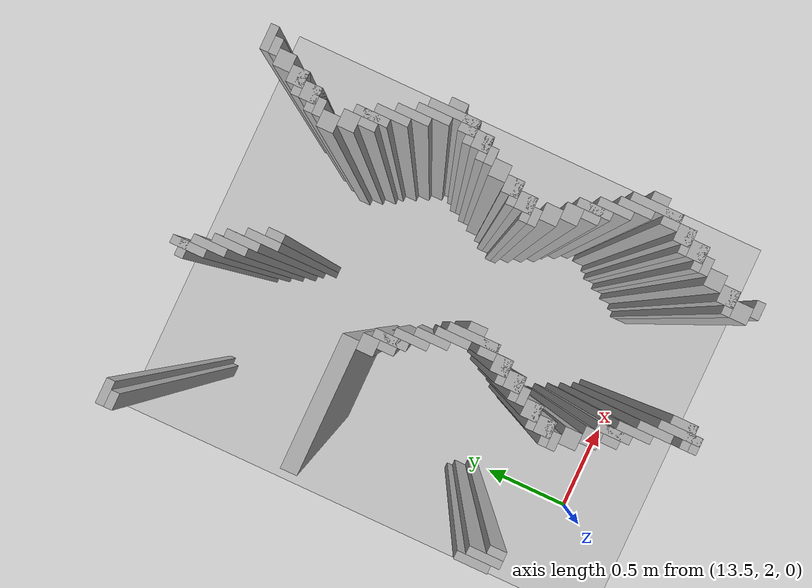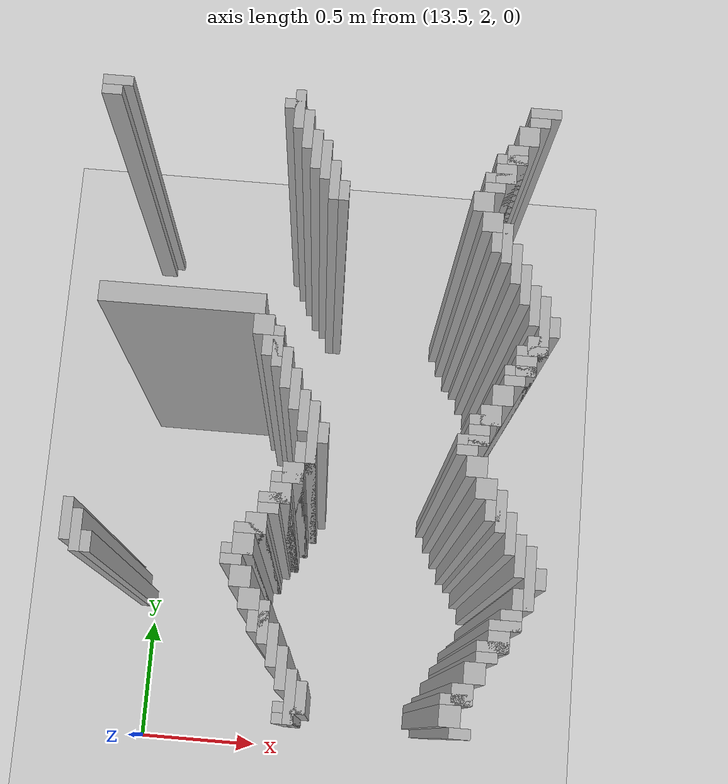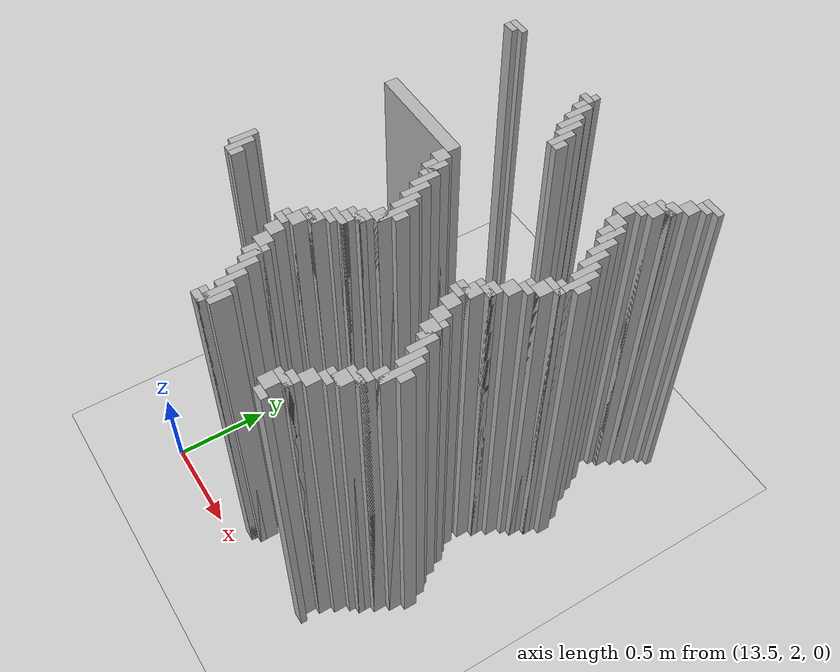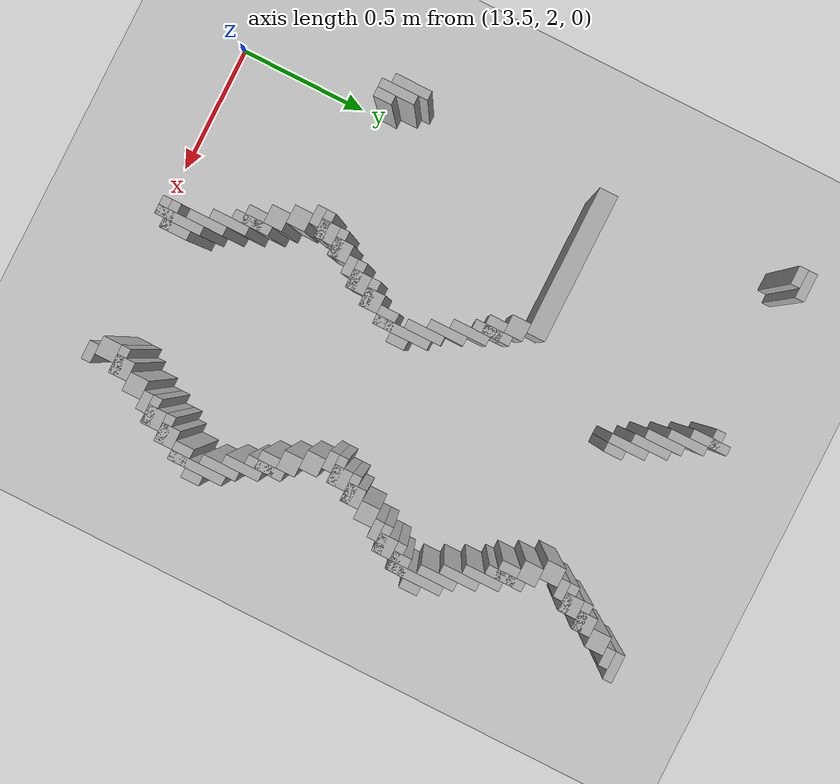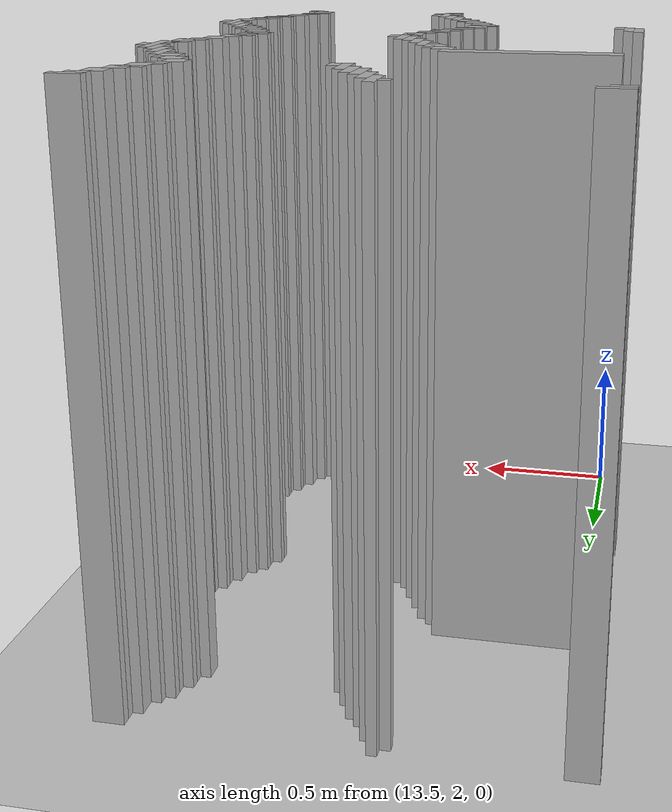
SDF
<sdf version="1.6">
 <world name="slam_world">
  <model name="ground_plane">
   <static>true</static>
   <link name="link">
    <collision name="collision">
     <geometry><plane><normal>0 0 1</normal><size>100 100</size></plane></geometry>
    </collision>
    <visual name="visual">
     <geometry><plane><normal>0 0 1</normal><size>100 100</size></plane></geometry>
     <material>
      <ambient>0.8 0.8 0.8 1</ambient>
      <diffuse>0.8 0.8 0.8 1</diffuse>
      <specular>0.8 0.8 0.8 1</specular>
     </material>
    </visual>
   </link>
  </model>
  <model name="wall_4468">
   <static>true</static>
   <pose>13.416473317865428 4.193735498839907 1.0 0 0 0</pose>
   <link name="link">
    <collision name="collision">
     <geometry><box><size>0.10440835266821345 0.03480278422273782 2.0</size></box></geometry>
    </collision>
    <visual name="visual">
     <geometry><box><size>0.10440835266821345 0.03480278422273782 2.0</size></box></geometry>
     <material><ambient>0.5 0.5 0.5 1</ambient><diffuse>0.7 0.7 0.7 1</diffuse></material>
    </visual>
   </link>
  </model>
  <model name="wall_4469">
   <static>true</static>
   <pose>14.042923433874709 4.1415313225058 1.0 0 0 0</pose>
   <link name="link">
    <collision name="collision">
     <geometry><box><size>0.03480278422273782 0.13921113689095127 2.0</size></box></geometry>
    </collision>
    <visual name="visual">
     <geometry><box><size>0.03480278422273782 0.13921113689095127 2.0</size></box></geometry>
     <material><ambient>0.5 0.5 0.5 1</ambient><diffuse>0.7 0.7 0.7 1</diffuse></material>
    </visual>
   </link>
  </model>
  <model name="wall_4470">
   <static>true</static>
   <pose>14.878190255220417 4.193735498839907 1.0 0 0 0</pose>
   <link name="link">
    <collision name="collision">
     <geometry><box><size>0.10440835266821345 0.03480278422273782 2.0</size></box></geometry>
    </collision>
    <visual name="visual">
     <geometry><box><size>0.10440835266821345 0.03480278422273782 2.0</size></box></geometry>
     <material><ambient>0.5 0.5 0.5 1</ambient><diffuse>0.7 0.7 0.7 1</diffuse></material>
    </visual>
   </link>
  </model>
  <model name="wall_4478">
   <static>true</static>
   <pose>13.39907192575406 4.158932714617169 1.0 0 0 0</pose>
   <link name="link">
    <collision name="collision">
     <geometry><box><size>0.06960556844547564 0.03480278422273782 2.0</size></box></geometry>
    </collision>
    <visual name="visual">
     <geometry><box><size>0.06960556844547564 0.03480278422273782 2.0</size></box></geometry>
     <material><ambient>0.5 0.5 0.5 1</ambient><diffuse>0.7 0.7 0.7 1</diffuse></material>
    </visual>
   </link>
  </model>
  <model name="wall_4479">
   <static>true</static>
   <pose>14.02552204176334 4.158932714617169 1.0 0 0 0</pose>
   <link name="link">
    <collision name="collision">
     <geometry><box><size>0.06960556844547564 0.03480278422273782 2.0</size></box></geometry>
    </collision>
    <visual name="visual">
     <geometry><box><size>0.06960556844547564 0.03480278422273782 2.0</size></box></geometry>
     <material><ambient>0.5 0.5 0.5 1</ambient><diffuse>0.7 0.7 0.7 1</diffuse></material>
    </visual>
   </link>
  </model>
  <model name="wall_4480">
   <static>true</static>
   <pose>14.860788863109049 4.158932714617169 1.0 0 0 0</pose>
   <link name="link">
    <collision name="collision">
     <geometry><box><size>0.06960556844547564 0.03480278422273782 2.0</size></box></geometry>
    </collision>
    <visual name="visual">
     <geometry><box><size>0.06960556844547564 0.03480278422273782 2.0</size></box></geometry>
     <material><ambient>0.5 0.5 0.5 1</ambient><diffuse>0.7 0.7 0.7 1</diffuse></material>
    </visual>
   </link>
  </model>
  <model name="wall_4494">
   <static>true</static>
   <pose>14.077726218097448 4.071925754060325 1.0 0 0 0</pose>
   <link name="link">
    <collision name="collision">
     <geometry><box><size>0.03480278422273782 0.13921113689095127 2.0</size></box></geometry>
    </collision>
    <visual name="visual">
     <geometry><box><size>0.03480278422273782 0.13921113689095127 2.0</size></box></geometry>
     <material><ambient>0.5 0.5 0.5 1</ambient><diffuse>0.7 0.7 0.7 1</diffuse></material>
    </visual>
   </link>
  </model>
  <model name="wall_4495">
   <static>true</static>
   <pose>14.825986078886311 4.106728538283062 1.0 0 0 0</pose>
   <link name="link">
    <collision name="collision">
     <geometry><box><size>0.06960556844547564 0.06960556844547564 2.0</size></box></geometry>
    </collision>
    <visual name="visual">
     <geometry><box><size>0.06960556844547564 0.06960556844547564 2.0</size></box></geometry>
     <material><ambient>0.5 0.5 0.5 1</ambient><diffuse>0.7 0.7 0.7 1</diffuse></material>
    </visual>
   </link>
  </model>
  <model name="wall_4509">
   <static>true</static>
   <pose>14.112529002320185 4.002320185614849 1.0 0 0 0</pose>
   <link name="link">
    <collision name="collision">
     <geometry><box><size>0.03480278422273782 0.13921113689095127 2.0</size></box></geometry>
    </collision>
    <visual name="visual">
     <geometry><box><size>0.03480278422273782 0.13921113689095127 2.0</size></box></geometry>
     <material><ambient>0.5 0.5 0.5 1</ambient><diffuse>0.7 0.7 0.7 1</diffuse></material>
    </visual>
   </link>
  </model>
  <model name="wall_4510">
   <static>true</static>
   <pose>14.791183294663572 4.037122969837587 1.0 0 0 0</pose>
   <link name="link">
    <collision name="collision">
     <geometry><box><size>0.06960556844547564 0.06960556844547564 2.0</size></box></geometry>
    </collision>
    <visual name="visual">
     <geometry><box><size>0.06960556844547564 0.06960556844547564 2.0</size></box></geometry>
     <material><ambient>0.5 0.5 0.5 1</ambient><diffuse>0.7 0.7 0.7 1</diffuse></material>
    </visual>
   </link>
  </model>
  <model name="wall_4524">
   <static>true</static>
   <pose>14.147331786542923 3.967517401392111 1.0 0 0 0</pose>
   <link name="link">
    <collision name="collision">
     <geometry><box><size>0.03480278422273782 0.13921113689095127 2.0</size></box></geometry>
    </collision>
    <visual name="visual">
     <geometry><box><size>0.03480278422273782 0.13921113689095127 2.0</size></box></geometry>
     <material><ambient>0.5 0.5 0.5 1</ambient><diffuse>0.7 0.7 0.7 1</diffuse></material>
    </visual>
   </link>
  </model>
  <model name="wall_4525">
   <static>true</static>
   <pose>14.773781902552203 4.019721577726218 1.0 0 0 0</pose>
   <link name="link">
    <collision name="collision">
     <geometry><box><size>0.10440835266821345 0.03480278422273782 2.0</size></box></geometry>
    </collision>
    <visual name="visual">
     <geometry><box><size>0.10440835266821345 0.03480278422273782 2.0</size></box></geometry>
     <material><ambient>0.5 0.5 0.5 1</ambient><diffuse>0.7 0.7 0.7 1</diffuse></material>
    </visual>
   </link>
  </model>
  <model name="wall_4533">
   <static>true</static>
   <pose>14.756380510440835 3.967517401392111 1.0 0 0 0</pose>
   <link name="link">
    <collision name="collision">
     <geometry><box><size>0.06960556844547564 0.06960556844547564 2.0</size></box></geometry>
    </collision>
    <visual name="visual">
     <geometry><box><size>0.06960556844547564 0.06960556844547564 2.0</size></box></geometry>
     <material><ambient>0.5 0.5 0.5 1</ambient><diffuse>0.7 0.7 0.7 1</diffuse></material>
    </visual>
   </link>
  </model>
  <model name="wall_4547">
   <static>true</static>
   <pose>14.18213457076566 3.897911832946636 1.0 0 0 0</pose>
   <link name="link">
    <collision name="collision">
     <geometry><box><size>0.03480278422273782 0.13921113689095127 2.0</size></box></geometry>
    </collision>
    <visual name="visual">
     <geometry><box><size>0.03480278422273782 0.13921113689095127 2.0</size></box></geometry>
     <material><ambient>0.5 0.5 0.5 1</ambient><diffuse>0.7 0.7 0.7 1</diffuse></material>
    </visual>
   </link>
  </model>
  <model name="wall_4548">
   <static>true</static>
   <pose>14.738979118329466 3.9501160092807424 1.0 0 0 0</pose>
   <link name="link">
    <collision name="collision">
     <geometry><box><size>0.10440835266821345 0.03480278422273782 2.0</size></box></geometry>
    </collision>
    <visual name="visual">
     <geometry><box><size>0.10440835266821345 0.03480278422273782 2.0</size></box></geometry>
     <material><ambient>0.5 0.5 0.5 1</ambient><diffuse>0.7 0.7 0.7 1</diffuse></material>
    </visual>
   </link>
  </model>
  <model name="wall_4556">
   <static>true</static>
   <pose>14.721577726218097 3.9153132250580045 1.0 0 0 0</pose>
   <link name="link">
    <collision name="collision">
     <geometry><box><size>0.06960556844547564 0.03480278422273782 2.0</size></box></geometry>
    </collision>
    <visual name="visual">
     <geometry><box><size>0.06960556844547564 0.03480278422273782 2.0</size></box></geometry>
     <material><ambient>0.5 0.5 0.5 1</ambient><diffuse>0.7 0.7 0.7 1</diffuse></material>
    </visual>
   </link>
  </model>
  <model name="wall_4569">
   <static>true</static>
   <pose>14.2169373549884 3.863109048723898 1.0 0 0 0</pose>
   <link name="link">
    <collision name="collision">
     <geometry><box><size>0.03480278422273782 0.06960556844547564 2.0</size></box></geometry>
    </collision>
    <visual name="visual">
     <geometry><box><size>0.03480278422273782 0.06960556844547564 2.0</size></box></geometry>
     <material><ambient>0.5 0.5 0.5 1</ambient><diffuse>0.7 0.7 0.7 1</diffuse></material>
    </visual>
   </link>
  </model>
  <model name="wall_4570">
   <static>true</static>
   <pose>14.68677494199536 3.863109048723898 1.0 0 0 0</pose>
   <link name="link">
    <collision name="collision">
     <geometry><box><size>0.06960556844547564 0.06960556844547564 2.0</size></box></geometry>
    </collision>
    <visual name="visual">
     <geometry><box><size>0.06960556844547564 0.06960556844547564 2.0</size></box></geometry>
     <material><ambient>0.5 0.5 0.5 1</ambient><diffuse>0.7 0.7 0.7 1</diffuse></material>
    </visual>
   </link>
  </model>
  <model name="wall_4584">
   <static>true</static>
   <pose>14.721577726218097 3.793503480278422 1.0 0 0 0</pose>
   <link name="link">
    <collision name="collision">
     <geometry><box><size>0.06960556844547564 0.06960556844547564 2.0</size></box></geometry>
    </collision>
    <visual name="visual">
     <geometry><box><size>0.06960556844547564 0.06960556844547564 2.0</size></box></geometry>
     <material><ambient>0.5 0.5 0.5 1</ambient><diffuse>0.7 0.7 0.7 1</diffuse></material>
    </visual>
   </link>
  </model>
  <model name="wall_4598">
   <static>true</static>
   <pose>14.773781902552203 3.7238979118329465 1.0 0 0 0</pose>
   <link name="link">
    <collision name="collision">
     <geometry><box><size>0.03480278422273782 0.13921113689095127 2.0</size></box></geometry>
    </collision>
    <visual name="visual">
     <geometry><box><size>0.03480278422273782 0.13921113689095127 2.0</size></box></geometry>
     <material><ambient>0.5 0.5 0.5 1</ambient><diffuse>0.7 0.7 0.7 1</diffuse></material>
    </visual>
   </link>
  </model>
  <model name="wall_4612">
   <static>true</static>
   <pose>14.756380510440835 3.7238979118329465 1.0 0 0 0</pose>
   <link name="link">
    <collision name="collision">
     <geometry><box><size>0.06960556844547564 0.06960556844547564 2.0</size></box></geometry>
    </collision>
    <visual name="visual">
     <geometry><box><size>0.06960556844547564 0.06960556844547564 2.0</size></box></geometry>
     <material><ambient>0.5 0.5 0.5 1</ambient><diffuse>0.7 0.7 0.7 1</diffuse></material>
    </visual>
   </link>
  </model>
  <model name="wall_4626">
   <static>true</static>
   <pose>14.80858468677494 3.6542923433874708 1.0 0 0 0</pose>
   <link name="link">
    <collision name="collision">
     <geometry><box><size>0.03480278422273782 0.13921113689095127 2.0</size></box></geometry>
    </collision>
    <visual name="visual">
     <geometry><box><size>0.03480278422273782 0.13921113689095127 2.0</size></box></geometry>
     <material><ambient>0.5 0.5 0.5 1</ambient><diffuse>0.7 0.7 0.7 1</diffuse></material>
    </visual>
   </link>
  </model>
  <model name="wall_4649">
   <static>true</static>
   <pose>14.84338747099768 3.584686774941995 1.0 0 0 0</pose>
   <link name="link">
    <collision name="collision">
     <geometry><box><size>0.03480278422273782 0.13921113689095127 2.0</size></box></geometry>
    </collision>
    <visual name="visual">
     <geometry><box><size>0.03480278422273782 0.13921113689095127 2.0</size></box></geometry>
     <material><ambient>0.5 0.5 0.5 1</ambient><diffuse>0.7 0.7 0.7 1</diffuse></material>
    </visual>
   </link>
  </model>
  <model name="wall_4672">
   <static>true</static>
   <pose>14.878190255220417 3.51508120649652 1.0 0 0 0</pose>
   <link name="link">
    <collision name="collision">
     <geometry><box><size>0.03480278422273782 0.13921113689095127 2.0</size></box></geometry>
    </collision>
    <visual name="visual">
     <geometry><box><size>0.03480278422273782 0.13921113689095127 2.0</size></box></geometry>
     <material><ambient>0.5 0.5 0.5 1</ambient><diffuse>0.7 0.7 0.7 1</diffuse></material>
    </visual>
   </link>
  </model>
  <model name="wall_4686">
   <static>true</static>
   <pose>14.912993039443155 3.445475638051044 1.0 0 0 0</pose>
   <link name="link">
    <collision name="collision">
     <geometry><box><size>0.03480278422273782 0.2088167053364269 2.0</size></box></geometry>
    </collision>
    <visual name="visual">
     <geometry><box><size>0.03480278422273782 0.2088167053364269 2.0</size></box></geometry>
     <material><ambient>0.5 0.5 0.5 1</ambient><diffuse>0.7 0.7 0.7 1</diffuse></material>
    </visual>
   </link>
  </model>
  <model name="wall_4708">
   <static>true</static>
   <pose>13.7122969837587 3.445475638051044 1.0 0 0 0</pose>
   <link name="link">
    <collision name="collision">
     <geometry><box><size>0.5568445475638051 0.06960556844547564 2.0</size></box></geometry>
    </collision>
    <visual name="visual">
     <geometry><box><size>0.5568445475638051 0.06960556844547564 2.0</size></box></geometry>
     <material><ambient>0.5 0.5 0.5 1</ambient><diffuse>0.7 0.7 0.7 1</diffuse></material>
    </visual>
   </link>
  </model>
  <model name="wall_4709">
   <static>true</static>
   <pose>14.947795823665892 3.445475638051044 1.0 0 0 0</pose>
   <link name="link">
    <collision name="collision">
     <geometry><box><size>0.03480278422273782 0.06960556844547564 2.0</size></box></geometry>
    </collision>
    <visual name="visual">
     <geometry><box><size>0.03480278422273782 0.06960556844547564 2.0</size></box></geometry>
     <material><ambient>0.5 0.5 0.5 1</ambient><diffuse>0.7 0.7 0.7 1</diffuse></material>
    </visual>
   </link>
  </model>
  <model name="wall_4731">
   <static>true</static>
   <pose>13.990719257540603 3.3758700696055683 1.0 0 0 0</pose>
   <link name="link">
    <collision name="collision">
     <geometry><box><size>0.06960556844547564 0.06960556844547564 2.0</size></box></geometry>
    </collision>
    <visual name="visual">
     <geometry><box><size>0.06960556844547564 0.06960556844547564 2.0</size></box></geometry>
     <material><ambient>0.5 0.5 0.5 1</ambient><diffuse>0.7 0.7 0.7 1</diffuse></material>
    </visual>
   </link>
  </model>
  <model name="wall_4732">
   <static>true</static>
   <pose>14.895591647331786 3.3758700696055683 1.0 0 0 0</pose>
   <link name="link">
    <collision name="collision">
     <geometry><box><size>0.06960556844547564 0.06960556844547564 2.0</size></box></geometry>
    </collision>
    <visual name="visual">
     <geometry><box><size>0.06960556844547564 0.06960556844547564 2.0</size></box></geometry>
     <material><ambient>0.5 0.5 0.5 1</ambient><diffuse>0.7 0.7 0.7 1</diffuse></material>
    </visual>
   </link>
  </model>
  <model name="wall_4745">
   <static>true</static>
   <pose>14.042923433874709 3.3062645011600926 1.0 0 0 0</pose>
   <link name="link">
    <collision name="collision">
     <geometry><box><size>0.03480278422273782 0.13921113689095127 2.0</size></box></geometry>
    </collision>
    <visual name="visual">
     <geometry><box><size>0.03480278422273782 0.13921113689095127 2.0</size></box></geometry>
     <material><ambient>0.5 0.5 0.5 1</ambient><diffuse>0.7 0.7 0.7 1</diffuse></material>
    </visual>
   </link>
  </model>
  <model name="wall_4746">
   <static>true</static>
   <pose>14.878190255220417 3.358468677494199 1.0 0 0 0</pose>
   <link name="link">
    <collision name="collision">
     <geometry><box><size>0.10440835266821345 0.03480278422273782 2.0</size></box></geometry>
    </collision>
    <visual name="visual">
     <geometry><box><size>0.10440835266821345 0.03480278422273782 2.0</size></box></geometry>
     <material><ambient>0.5 0.5 0.5 1</ambient><diffuse>0.7 0.7 0.7 1</diffuse></material>
    </visual>
   </link>
  </model>
  <model name="wall_4759">
   <static>true</static>
   <pose>14.02552204176334 3.3062645011600926 1.0 0 0 0</pose>
   <link name="link">
    <collision name="collision">
     <geometry><box><size>0.06960556844547564 0.06960556844547564 2.0</size></box></geometry>
    </collision>
    <visual name="visual">
     <geometry><box><size>0.06960556844547564 0.06960556844547564 2.0</size></box></geometry>
     <material><ambient>0.5 0.5 0.5 1</ambient><diffuse>0.7 0.7 0.7 1</diffuse></material>
    </visual>
   </link>
  </model>
  <model name="wall_4760">
   <static>true</static>
   <pose>14.860788863109049 3.3062645011600926 1.0 0 0 0</pose>
   <link name="link">
    <collision name="collision">
     <geometry><box><size>0.06960556844547564 0.06960556844547564 2.0</size></box></geometry>
    </collision>
    <visual name="visual">
     <geometry><box><size>0.06960556844547564 0.06960556844547564 2.0</size></box></geometry>
     <material><ambient>0.5 0.5 0.5 1</ambient><diffuse>0.7 0.7 0.7 1</diffuse></material>
    </visual>
   </link>
  </model>
  <model name="wall_4773">
   <static>true</static>
   <pose>14.077726218097448 3.236658932714617 1.0 0 0 0</pose>
   <link name="link">
    <collision name="collision">
     <geometry><box><size>0.03480278422273782 0.13921113689095127 2.0</size></box></geometry>
    </collision>
    <visual name="visual">
     <geometry><box><size>0.03480278422273782 0.13921113689095127 2.0</size></box></geometry>
     <material><ambient>0.5 0.5 0.5 1</ambient><diffuse>0.7 0.7 0.7 1</diffuse></material>
    </visual>
   </link>
  </model>
  <model name="wall_4774">
   <static>true</static>
   <pose>14.84338747099768 3.288863109048724 1.0 0 0 0</pose>
   <link name="link">
    <collision name="collision">
     <geometry><box><size>0.10440835266821345 0.03480278422273782 2.0</size></box></geometry>
    </collision>
    <visual name="visual">
     <geometry><box><size>0.10440835266821345 0.03480278422273782 2.0</size></box></geometry>
     <material><ambient>0.5 0.5 0.5 1</ambient><diffuse>0.7 0.7 0.7 1</diffuse></material>
    </visual>
   </link>
  </model>
  <model name="wall_4781">
   <static>true</static>
   <pose>14.825986078886311 3.254060324825986 1.0 0 0 0</pose>
   <link name="link">
    <collision name="collision">
     <geometry><box><size>0.06960556844547564 0.03480278422273782 2.0</size></box></geometry>
    </collision>
    <visual name="visual">
     <geometry><box><size>0.06960556844547564 0.03480278422273782 2.0</size></box></geometry>
     <material><ambient>0.5 0.5 0.5 1</ambient><diffuse>0.7 0.7 0.7 1</diffuse></material>
    </visual>
   </link>
  </model>
  <model name="wall_4794">
   <static>true</static>
   <pose>14.112529002320185 3.167053364269141 1.0 0 0 0</pose>
   <link name="link">
    <collision name="collision">
     <geometry><box><size>0.03480278422273782 0.13921113689095127 2.0</size></box></geometry>
    </collision>
    <visual name="visual">
     <geometry><box><size>0.03480278422273782 0.13921113689095127 2.0</size></box></geometry>
     <material><ambient>0.5 0.5 0.5 1</ambient><diffuse>0.7 0.7 0.7 1</diffuse></material>
    </visual>
   </link>
  </model>
  <model name="wall_4795">
   <static>true</static>
   <pose>14.791183294663572 3.201856148491879 1.0 0 0 0</pose>
   <link name="link">
    <collision name="collision">
     <geometry><box><size>0.06960556844547564 0.06960556844547564 2.0</size></box></geometry>
    </collision>
    <visual name="visual">
     <geometry><box><size>0.06960556844547564 0.06960556844547564 2.0</size></box></geometry>
     <material><ambient>0.5 0.5 0.5 1</ambient><diffuse>0.7 0.7 0.7 1</diffuse></material>
    </visual>
   </link>
  </model>
  <model name="wall_4808">
   <static>true</static>
   <pose>14.147331786542923 3.097447795823666 1.0 0 0 0</pose>
   <link name="link">
    <collision name="collision">
     <geometry><box><size>0.03480278422273782 0.13921113689095127 2.0</size></box></geometry>
    </collision>
    <visual name="visual">
     <geometry><box><size>0.03480278422273782 0.13921113689095127 2.0</size></box></geometry>
     <material><ambient>0.5 0.5 0.5 1</ambient><diffuse>0.7 0.7 0.7 1</diffuse></material>
    </visual>
   </link>
  </model>
  <model name="wall_4809">
   <static>true</static>
   <pose>14.756380510440835 3.1322505800464038 1.0 0 0 0</pose>
   <link name="link">
    <collision name="collision">
     <geometry><box><size>0.06960556844547564 0.06960556844547564 2.0</size></box></geometry>
    </collision>
    <visual name="visual">
     <geometry><box><size>0.06960556844547564 0.06960556844547564 2.0</size></box></geometry>
     <material><ambient>0.5 0.5 0.5 1</ambient><diffuse>0.7 0.7 0.7 1</diffuse></material>
    </visual>
   </link>
  </model>
  <model name="wall_4822">
   <static>true</static>
   <pose>14.18213457076566 3.02784222737819 1.0 0 0 0</pose>
   <link name="link">
    <collision name="collision">
     <geometry><box><size>0.03480278422273782 0.2088167053364269 2.0</size></box></geometry>
    </collision>
    <visual name="visual">
     <geometry><box><size>0.03480278422273782 0.2088167053364269 2.0</size></box></geometry>
     <material><ambient>0.5 0.5 0.5 1</ambient><diffuse>0.7 0.7 0.7 1</diffuse></material>
    </visual>
   </link>
  </model>
  <model name="wall_4823">
   <static>true</static>
   <pose>14.738979118329466 3.1148491879350346 1.0 0 0 0</pose>
   <link name="link">
    <collision name="collision">
     <geometry><box><size>0.10440835266821345 0.03480278422273782 2.0</size></box></geometry>
    </collision>
    <visual name="visual">
     <geometry><box><size>0.10440835266821345 0.03480278422273782 2.0</size></box></geometry>
     <material><ambient>0.5 0.5 0.5 1</ambient><diffuse>0.7 0.7 0.7 1</diffuse></material>
    </visual>
   </link>
  </model>
  <model name="wall_4830">
   <static>true</static>
   <pose>14.721577726218097 3.062645011600928 1.0 0 0 0</pose>
   <link name="link">
    <collision name="collision">
     <geometry><box><size>0.06960556844547564 0.06960556844547564 2.0</size></box></geometry>
    </collision>
    <visual name="visual">
     <geometry><box><size>0.06960556844547564 0.06960556844547564 2.0</size></box></geometry>
     <material><ambient>0.5 0.5 0.5 1</ambient><diffuse>0.7 0.7 0.7 1</diffuse></material>
    </visual>
   </link>
  </model>
  <model name="wall_4845">
   <static>true</static>
   <pose>14.2169373549884 3.02784222737819 1.0 0 0 0</pose>
   <link name="link">
    <collision name="collision">
     <geometry><box><size>0.03480278422273782 0.06960556844547564 2.0</size></box></geometry>
    </collision>
    <visual name="visual">
     <geometry><box><size>0.03480278422273782 0.06960556844547564 2.0</size></box></geometry>
     <material><ambient>0.5 0.5 0.5 1</ambient><diffuse>0.7 0.7 0.7 1</diffuse></material>
    </visual>
   </link>
  </model>
  <model name="wall_4846">
   <static>true</static>
   <pose>14.704176334106728 3.045243619489559 1.0 0 0 0</pose>
   <link name="link">
    <collision name="collision">
     <geometry><box><size>0.10440835266821345 0.03480278422273782 2.0</size></box></geometry>
    </collision>
    <visual name="visual">
     <geometry><box><size>0.10440835266821345 0.03480278422273782 2.0</size></box></geometry>
     <material><ambient>0.5 0.5 0.5 1</ambient><diffuse>0.7 0.7 0.7 1</diffuse></material>
    </visual>
   </link>
  </model>
  <model name="wall_4853">
   <static>true</static>
   <pose>14.68677494199536 3.010440835266821 1.0 0 0 0</pose>
   <link name="link">
    <collision name="collision">
     <geometry><box><size>0.06960556844547564 0.03480278422273782 2.0</size></box></geometry>
    </collision>
    <visual name="visual">
     <geometry><box><size>0.06960556844547564 0.03480278422273782 2.0</size></box></geometry>
     <material><ambient>0.5 0.5 0.5 1</ambient><diffuse>0.7 0.7 0.7 1</diffuse></material>
    </visual>
   </link>
  </model>
  <model name="wall_4868">
   <static>true</static>
   <pose>14.164733178654291 2.9582366589327145 1.0 0 0 0</pose>
   <link name="link">
    <collision name="collision">
     <geometry><box><size>0.06960556844547564 0.06960556844547564 2.0</size></box></geometry>
    </collision>
    <visual name="visual">
     <geometry><box><size>0.06960556844547564 0.06960556844547564 2.0</size></box></geometry>
     <material><ambient>0.5 0.5 0.5 1</ambient><diffuse>0.7 0.7 0.7 1</diffuse></material>
    </visual>
   </link>
  </model>
  <model name="wall_4869">
   <static>true</static>
   <pose>14.721577726218097 2.9582366589327145 1.0 0 0 0</pose>
   <link name="link">
    <collision name="collision">
     <geometry><box><size>0.06960556844547564 0.06960556844547564 2.0</size></box></geometry>
    </collision>
    <visual name="visual">
     <geometry><box><size>0.06960556844547564 0.06960556844547564 2.0</size></box></geometry>
     <material><ambient>0.5 0.5 0.5 1</ambient><diffuse>0.7 0.7 0.7 1</diffuse></material>
    </visual>
   </link>
  </model>
  <model name="wall_4886">
   <static>true</static>
   <pose>14.129930394431554 2.8886310904872388 1.0 0 0 0</pose>
   <link name="link">
    <collision name="collision">
     <geometry><box><size>0.06960556844547564 0.06960556844547564 2.0</size></box></geometry>
    </collision>
    <visual name="visual">
     <geometry><box><size>0.06960556844547564 0.06960556844547564 2.0</size></box></geometry>
     <material><ambient>0.5 0.5 0.5 1</ambient><diffuse>0.7 0.7 0.7 1</diffuse></material>
    </visual>
   </link>
  </model>
  <model name="wall_4887">
   <static>true</static>
   <pose>14.756380510440835 2.8886310904872388 1.0 0 0 0</pose>
   <link name="link">
    <collision name="collision">
     <geometry><box><size>0.06960556844547564 0.06960556844547564 2.0</size></box></geometry>
    </collision>
    <visual name="visual">
     <geometry><box><size>0.06960556844547564 0.06960556844547564 2.0</size></box></geometry>
     <material><ambient>0.5 0.5 0.5 1</ambient><diffuse>0.7 0.7 0.7 1</diffuse></material>
    </visual>
   </link>
  </model>
  <model name="wall_4902">
   <static>true</static>
   <pose>14.112529002320185 2.87122969837587 1.0 0 0 0</pose>
   <link name="link">
    <collision name="collision">
     <geometry><box><size>0.10440835266821345 0.03480278422273782 2.0</size></box></geometry>
    </collision>
    <visual name="visual">
     <geometry><box><size>0.10440835266821345 0.03480278422273782 2.0</size></box></geometry>
     <material><ambient>0.5 0.5 0.5 1</ambient><diffuse>0.7 0.7 0.7 1</diffuse></material>
    </visual>
   </link>
  </model>
  <model name="wall_4903">
   <static>true</static>
   <pose>14.80858468677494 2.819025522041763 1.0 0 0 0</pose>
   <link name="link">
    <collision name="collision">
     <geometry><box><size>0.03480278422273782 0.13921113689095127 2.0</size></box></geometry>
    </collision>
    <visual name="visual">
     <geometry><box><size>0.03480278422273782 0.13921113689095127 2.0</size></box></geometry>
     <material><ambient>0.5 0.5 0.5 1</ambient><diffuse>0.7 0.7 0.7 1</diffuse></material>
    </visual>
   </link>
  </model>
  <model name="wall_4918">
   <static>true</static>
   <pose>14.095127610208817 2.819025522041763 1.0 0 0 0</pose>
   <link name="link">
    <collision name="collision">
     <geometry><box><size>0.06960556844547564 0.06960556844547564 2.0</size></box></geometry>
    </collision>
    <visual name="visual">
     <geometry><box><size>0.06960556844547564 0.06960556844547564 2.0</size></box></geometry>
     <material><ambient>0.5 0.5 0.5 1</ambient><diffuse>0.7 0.7 0.7 1</diffuse></material>
    </visual>
   </link>
  </model>
  <model name="wall_4919">
   <static>true</static>
   <pose>14.791183294663572 2.819025522041763 1.0 0 0 0</pose>
   <link name="link">
    <collision name="collision">
     <geometry><box><size>0.06960556844547564 0.06960556844547564 2.0</size></box></geometry>
    </collision>
    <visual name="visual">
     <geometry><box><size>0.06960556844547564 0.06960556844547564 2.0</size></box></geometry>
     <material><ambient>0.5 0.5 0.5 1</ambient><diffuse>0.7 0.7 0.7 1</diffuse></material>
    </visual>
   </link>
  </model>
  <model name="wall_4934">
   <static>true</static>
   <pose>14.077726218097448 2.8016241299303943 1.0 0 0 0</pose>
   <link name="link">
    <collision name="collision">
     <geometry><box><size>0.10440835266821345 0.03480278422273782 2.0</size></box></geometry>
    </collision>
    <visual name="visual">
     <geometry><box><size>0.10440835266821345 0.03480278422273782 2.0</size></box></geometry>
     <material><ambient>0.5 0.5 0.5 1</ambient><diffuse>0.7 0.7 0.7 1</diffuse></material>
    </visual>
   </link>
  </model>
  <model name="wall_4935">
   <static>true</static>
   <pose>14.84338747099768 2.7494199535962878 1.0 0 0 0</pose>
   <link name="link">
    <collision name="collision">
     <geometry><box><size>0.03480278422273782 0.13921113689095127 2.0</size></box></geometry>
    </collision>
    <visual name="visual">
     <geometry><box><size>0.03480278422273782 0.13921113689095127 2.0</size></box></geometry>
     <material><ambient>0.5 0.5 0.5 1</ambient><diffuse>0.7 0.7 0.7 1</diffuse></material>
    </visual>
   </link>
  </model>
  <model name="wall_4942">
   <static>true</static>
   <pose>14.06032482598608 2.7668213457076565 1.0 0 0 0</pose>
   <link name="link">
    <collision name="collision">
     <geometry><box><size>0.06960556844547564 0.03480278422273782 2.0</size></box></geometry>
    </collision>
    <visual name="visual">
     <geometry><box><size>0.06960556844547564 0.03480278422273782 2.0</size></box></geometry>
     <material><ambient>0.5 0.5 0.5 1</ambient><diffuse>0.7 0.7 0.7 1</diffuse></material>
    </visual>
   </link>
  </model>
  <model name="wall_4956">
   <static>true</static>
   <pose>13.416473317865428 2.679814385150812 1.0 0 0 0</pose>
   <link name="link">
    <collision name="collision">
     <geometry><box><size>0.03480278422273782 0.13921113689095127 2.0</size></box></geometry>
    </collision>
    <visual name="visual">
     <geometry><box><size>0.03480278422273782 0.13921113689095127 2.0</size></box></geometry>
     <material><ambient>0.5 0.5 0.5 1</ambient><diffuse>0.7 0.7 0.7 1</diffuse></material>
    </visual>
   </link>
  </model>
  <model name="wall_4957">
   <static>true</static>
   <pose>14.02552204176334 2.71461716937355 1.0 0 0 0</pose>
   <link name="link">
    <collision name="collision">
     <geometry><box><size>0.06960556844547564 0.06960556844547564 2.0</size></box></geometry>
    </collision>
    <visual name="visual">
     <geometry><box><size>0.06960556844547564 0.06960556844547564 2.0</size></box></geometry>
     <material><ambient>0.5 0.5 0.5 1</ambient><diffuse>0.7 0.7 0.7 1</diffuse></material>
    </visual>
   </link>
  </model>
  <model name="wall_4958">
   <static>true</static>
   <pose>14.878190255220417 2.679814385150812 1.0 0 0 0</pose>
   <link name="link">
    <collision name="collision">
     <geometry><box><size>0.03480278422273782 0.13921113689095127 2.0</size></box></geometry>
    </collision>
    <visual name="visual">
     <geometry><box><size>0.03480278422273782 0.13921113689095127 2.0</size></box></geometry>
     <material><ambient>0.5 0.5 0.5 1</ambient><diffuse>0.7 0.7 0.7 1</diffuse></material>
    </visual>
   </link>
  </model>
  <model name="wall_4972">
   <static>true</static>
   <pose>13.451276102088167 2.645011600928074 1.0 0 0 0</pose>
   <link name="link">
    <collision name="collision">
     <geometry><box><size>0.03480278422273782 0.13921113689095127 2.0</size></box></geometry>
    </collision>
    <visual name="visual">
     <geometry><box><size>0.03480278422273782 0.13921113689095127 2.0</size></box></geometry>
     <material><ambient>0.5 0.5 0.5 1</ambient><diffuse>0.7 0.7 0.7 1</diffuse></material>
    </visual>
   </link>
  </model>
  <model name="wall_4973">
   <static>true</static>
   <pose>14.008120649651971 2.6972157772621808 1.0 0 0 0</pose>
   <link name="link">
    <collision name="collision">
     <geometry><box><size>0.10440835266821345 0.03480278422273782 2.0</size></box></geometry>
    </collision>
    <visual name="visual">
     <geometry><box><size>0.10440835266821345 0.03480278422273782 2.0</size></box></geometry>
     <material><ambient>0.5 0.5 0.5 1</ambient><diffuse>0.7 0.7 0.7 1</diffuse></material>
    </visual>
   </link>
  </model>
  <model name="wall_4974">
   <static>true</static>
   <pose>14.912993039443155 2.6102088167053363 1.0 0 0 0</pose>
   <link name="link">
    <collision name="collision">
     <geometry><box><size>0.03480278422273782 0.2088167053364269 2.0</size></box></geometry>
    </collision>
    <visual name="visual">
     <geometry><box><size>0.03480278422273782 0.2088167053364269 2.0</size></box></geometry>
     <material><ambient>0.5 0.5 0.5 1</ambient><diffuse>0.7 0.7 0.7 1</diffuse></material>
    </visual>
   </link>
  </model>
  <model name="wall_4981">
   <static>true</static>
   <pose>13.990719257540603 2.645011600928074 1.0 0 0 0</pose>
   <link name="link">
    <collision name="collision">
     <geometry><box><size>0.06960556844547564 0.06960556844547564 2.0</size></box></geometry>
    </collision>
    <visual name="visual">
     <geometry><box><size>0.06960556844547564 0.06960556844547564 2.0</size></box></geometry>
     <material><ambient>0.5 0.5 0.5 1</ambient><diffuse>0.7 0.7 0.7 1</diffuse></material>
    </visual>
   </link>
  </model>
  <model name="wall_4993">
   <static>true</static>
   <pose>13.486078886310905 2.6102088167053363 1.0 0 0 0</pose>
   <link name="link">
    <collision name="collision">
     <geometry><box><size>0.03480278422273782 0.06960556844547564 2.0</size></box></geometry>
    </collision>
    <visual name="visual">
     <geometry><box><size>0.03480278422273782 0.06960556844547564 2.0</size></box></geometry>
     <material><ambient>0.5 0.5 0.5 1</ambient><diffuse>0.7 0.7 0.7 1</diffuse></material>
    </visual>
   </link>
  </model>
  <model name="wall_4994">
   <static>true</static>
   <pose>13.973317865429234 2.627610208816705 1.0 0 0 0</pose>
   <link name="link">
    <collision name="collision">
     <geometry><box><size>0.10440835266821345 0.03480278422273782 2.0</size></box></geometry>
    </collision>
    <visual name="visual">
     <geometry><box><size>0.10440835266821345 0.03480278422273782 2.0</size></box></geometry>
     <material><ambient>0.5 0.5 0.5 1</ambient><diffuse>0.7 0.7 0.7 1</diffuse></material>
    </visual>
   </link>
  </model>
  <model name="wall_4995">
   <static>true</static>
   <pose>14.947795823665892 2.6102088167053363 1.0 0 0 0</pose>
   <link name="link">
    <collision name="collision">
     <geometry><box><size>0.03480278422273782 0.06960556844547564 2.0</size></box></geometry>
    </collision>
    <visual name="visual">
     <geometry><box><size>0.03480278422273782 0.06960556844547564 2.0</size></box></geometry>
     <material><ambient>0.5 0.5 0.5 1</ambient><diffuse>0.7 0.7 0.7 1</diffuse></material>
    </visual>
   </link>
  </model>
  <model name="wall_5006">
   <static>true</static>
   <pose>13.955916473317865 2.5928074245939676 1.0 0 0 0</pose>
   <link name="link">
    <collision name="collision">
     <geometry><box><size>0.06960556844547564 0.03480278422273782 2.0</size></box></geometry>
    </collision>
    <visual name="visual">
     <geometry><box><size>0.06960556844547564 0.03480278422273782 2.0</size></box></geometry>
     <material><ambient>0.5 0.5 0.5 1</ambient><diffuse>0.7 0.7 0.7 1</diffuse></material>
    </visual>
   </link>
  </model>
  <model name="wall_5021">
   <static>true</static>
   <pose>13.990719257540603 2.5406032482598606 1.0 0 0 0</pose>
   <link name="link">
    <collision name="collision">
     <geometry><box><size>0.06960556844547564 0.06960556844547564 2.0</size></box></geometry>
    </collision>
    <visual name="visual">
     <geometry><box><size>0.06960556844547564 0.06960556844547564 2.0</size></box></geometry>
     <material><ambient>0.5 0.5 0.5 1</ambient><diffuse>0.7 0.7 0.7 1</diffuse></material>
    </visual>
   </link>
  </model>
  <model name="wall_5022">
   <static>true</static>
   <pose>14.895591647331786 2.5406032482598606 1.0 0 0 0</pose>
   <link name="link">
    <collision name="collision">
     <geometry><box><size>0.06960556844547564 0.06960556844547564 2.0</size></box></geometry>
    </collision>
    <visual name="visual">
     <geometry><box><size>0.06960556844547564 0.06960556844547564 2.0</size></box></geometry>
     <material><ambient>0.5 0.5 0.5 1</ambient><diffuse>0.7 0.7 0.7 1</diffuse></material>
    </visual>
   </link>
  </model>
  <model name="wall_5045">
   <static>true</static>
   <pose>14.02552204176334 2.470997679814385 1.0 0 0 0</pose>
   <link name="link">
    <collision name="collision">
     <geometry><box><size>0.06960556844547564 0.06960556844547564 2.0</size></box></geometry>
    </collision>
    <visual name="visual">
     <geometry><box><size>0.06960556844547564 0.06960556844547564 2.0</size></box></geometry>
     <material><ambient>0.5 0.5 0.5 1</ambient><diffuse>0.7 0.7 0.7 1</diffuse></material>
    </visual>
   </link>
  </model>
  <model name="wall_5046">
   <static>true</static>
   <pose>14.860788863109049 2.470997679814385 1.0 0 0 0</pose>
   <link name="link">
    <collision name="collision">
     <geometry><box><size>0.06960556844547564 0.06960556844547564 2.0</size></box></geometry>
    </collision>
    <visual name="visual">
     <geometry><box><size>0.06960556844547564 0.06960556844547564 2.0</size></box></geometry>
     <material><ambient>0.5 0.5 0.5 1</ambient><diffuse>0.7 0.7 0.7 1</diffuse></material>
    </visual>
   </link>
  </model>
  <model name="wall_5061">
   <static>true</static>
   <pose>14.077726218097448 2.4013921113689096 1.0 0 0 0</pose>
   <link name="link">
    <collision name="collision">
     <geometry><box><size>0.03480278422273782 0.13921113689095127 2.0</size></box></geometry>
    </collision>
    <visual name="visual">
     <geometry><box><size>0.03480278422273782 0.13921113689095127 2.0</size></box></geometry>
     <material><ambient>0.5 0.5 0.5 1</ambient><diffuse>0.7 0.7 0.7 1</diffuse></material>
    </visual>
   </link>
  </model>
  <model name="wall_5062">
   <static>true</static>
   <pose>14.84338747099768 2.453596287703016 1.0 0 0 0</pose>
   <link name="link">
    <collision name="collision">
     <geometry><box><size>0.10440835266821345 0.03480278422273782 2.0</size></box></geometry>
    </collision>
    <visual name="visual">
     <geometry><box><size>0.10440835266821345 0.03480278422273782 2.0</size></box></geometry>
     <material><ambient>0.5 0.5 0.5 1</ambient><diffuse>0.7 0.7 0.7 1</diffuse></material>
    </visual>
   </link>
  </model>
  <model name="wall_5075">
   <static>true</static>
   <pose>14.06032482598608 2.4013921113689096 1.0 0 0 0</pose>
   <link name="link">
    <collision name="collision">
     <geometry><box><size>0.06960556844547564 0.06960556844547564 2.0</size></box></geometry>
    </collision>
    <visual name="visual">
     <geometry><box><size>0.06960556844547564 0.06960556844547564 2.0</size></box></geometry>
     <material><ambient>0.5 0.5 0.5 1</ambient><diffuse>0.7 0.7 0.7 1</diffuse></material>
    </visual>
   </link>
  </model>
  <model name="wall_5076">
   <static>true</static>
   <pose>14.825986078886311 2.4013921113689096 1.0 0 0 0</pose>
   <link name="link">
    <collision name="collision">
     <geometry><box><size>0.06960556844547564 0.06960556844547564 2.0</size></box></geometry>
    </collision>
    <visual name="visual">
     <geometry><box><size>0.06960556844547564 0.06960556844547564 2.0</size></box></geometry>
     <material><ambient>0.5 0.5 0.5 1</ambient><diffuse>0.7 0.7 0.7 1</diffuse></material>
    </visual>
   </link>
  </model>
  <model name="wall_5091">
   <static>true</static>
   <pose>14.112529002320185 2.331786542923434 1.0 0 0 0</pose>
   <link name="link">
    <collision name="collision">
     <geometry><box><size>0.03480278422273782 0.13921113689095127 2.0</size></box></geometry>
    </collision>
    <visual name="visual">
     <geometry><box><size>0.03480278422273782 0.13921113689095127 2.0</size></box></geometry>
     <material><ambient>0.5 0.5 0.5 1</ambient><diffuse>0.7 0.7 0.7 1</diffuse></material>
    </visual>
   </link>
  </model>
  <model name="wall_5092">
   <static>true</static>
   <pose>14.80858468677494 2.3839907192575405 1.0 0 0 0</pose>
   <link name="link">
    <collision name="collision">
     <geometry><box><size>0.10440835266821345 0.03480278422273782 2.0</size></box></geometry>
    </collision>
    <visual name="visual">
     <geometry><box><size>0.10440835266821345 0.03480278422273782 2.0</size></box></geometry>
     <material><ambient>0.5 0.5 0.5 1</ambient><diffuse>0.7 0.7 0.7 1</diffuse></material>
    </visual>
   </link>
  </model>
  <model name="wall_5100">
   <static>true</static>
   <pose>14.791183294663572 2.3491879350348026 1.0 0 0 0</pose>
   <link name="link">
    <collision name="collision">
     <geometry><box><size>0.06960556844547564 0.03480278422273782 2.0</size></box></geometry>
    </collision>
    <visual name="visual">
     <geometry><box><size>0.06960556844547564 0.03480278422273782 2.0</size></box></geometry>
     <material><ambient>0.5 0.5 0.5 1</ambient><diffuse>0.7 0.7 0.7 1</diffuse></material>
    </visual>
   </link>
  </model>
  <model name="wall_5115">
   <static>true</static>
   <pose>14.147331786542923 2.262180974477958 1.0 0 0 0</pose>
   <link name="link">
    <collision name="collision">
     <geometry><box><size>0.03480278422273782 0.13921113689095127 2.0</size></box></geometry>
    </collision>
    <visual name="visual">
     <geometry><box><size>0.03480278422273782 0.13921113689095127 2.0</size></box></geometry>
     <material><ambient>0.5 0.5 0.5 1</ambient><diffuse>0.7 0.7 0.7 1</diffuse></material>
    </visual>
   </link>
  </model>
  <model name="wall_5116">
   <static>true</static>
   <pose>14.756380510440835 2.296983758700696 1.0 0 0 0</pose>
   <link name="link">
    <collision name="collision">
     <geometry><box><size>0.06960556844547564 0.06960556844547564 2.0</size></box></geometry>
    </collision>
    <visual name="visual">
     <geometry><box><size>0.06960556844547564 0.06960556844547564 2.0</size></box></geometry>
     <material><ambient>0.5 0.5 0.5 1</ambient><diffuse>0.7 0.7 0.7 1</diffuse></material>
    </visual>
   </link>
  </model>
  <model name="wall_5131">
   <static>true</static>
   <pose>14.18213457076566 2.1751740139211138 1.0 0 0 0</pose>
   <link name="link">
    <collision name="collision">
     <geometry><box><size>0.03480278422273782 0.17401392111368907 2.0</size></box></geometry>
    </collision>
    <visual name="visual">
     <geometry><box><size>0.03480278422273782 0.17401392111368907 2.0</size></box></geometry>
     <material><ambient>0.5 0.5 0.5 1</ambient><diffuse>0.7 0.7 0.7 1</diffuse></material>
    </visual>
   </link>
  </model>
  <model name="wall_5132">
   <static>true</static>
   <pose>14.721577726218097 2.2273781902552203 1.0 0 0 0</pose>
   <link name="link">
    <collision name="collision">
     <geometry><box><size>0.06960556844547564 0.06960556844547564 2.0</size></box></geometry>
    </collision>
    <visual name="visual">
     <geometry><box><size>0.06960556844547564 0.06960556844547564 2.0</size></box></geometry>
     <material><ambient>0.5 0.5 0.5 1</ambient><diffuse>0.7 0.7 0.7 1</diffuse></material>
    </visual>
   </link>
  </model>
  <model name="wall_5146">
   <static>true</static>
   <pose>14.2169373549884 2.1751740139211138 1.0 0 0 0</pose>
   <link name="link">
    <collision name="collision">
     <geometry><box><size>0.03480278422273782 0.10440835266821345 2.0</size></box></geometry>
    </collision>
    <visual name="visual">
     <geometry><box><size>0.03480278422273782 0.10440835266821345 2.0</size></box></geometry>
     <material><ambient>0.5 0.5 0.5 1</ambient><diffuse>0.7 0.7 0.7 1</diffuse></material>
    </visual>
   </link>
  </model>
  <model name="wall_5147">
   <static>true</static>
   <pose>14.704176334106728 2.2099767981438516 1.0 0 0 0</pose>
   <link name="link">
    <collision name="collision">
     <geometry><box><size>0.10440835266821345 0.03480278422273782 2.0</size></box></geometry>
    </collision>
    <visual name="visual">
     <geometry><box><size>0.10440835266821345 0.03480278422273782 2.0</size></box></geometry>
     <material><ambient>0.5 0.5 0.5 1</ambient><diffuse>0.7 0.7 0.7 1</diffuse></material>
    </visual>
   </link>
  </model>
  <model name="wall_5158">
   <static>true</static>
   <pose>14.68677494199536 2.1577726218097446 1.0 0 0 0</pose>
   <link name="link">
    <collision name="collision">
     <geometry><box><size>0.06960556844547564 0.06960556844547564 2.0</size></box></geometry>
    </collision>
    <visual name="visual">
     <geometry><box><size>0.06960556844547564 0.06960556844547564 2.0</size></box></geometry>
     <material><ambient>0.5 0.5 0.5 1</ambient><diffuse>0.7 0.7 0.7 1</diffuse></material>
    </visual>
   </link>
  </model>
  <model name="wall_5176">
   <static>true</static>
   <pose>14.18213457076566 2.140371229698376 1.0 0 0 0</pose>
   <link name="link">
    <collision name="collision">
     <geometry><box><size>0.10440835266821345 0.03480278422273782 2.0</size></box></geometry>
    </collision>
    <visual name="visual">
     <geometry><box><size>0.10440835266821345 0.03480278422273782 2.0</size></box></geometry>
     <material><ambient>0.5 0.5 0.5 1</ambient><diffuse>0.7 0.7 0.7 1</diffuse></material>
    </visual>
   </link>
  </model>
  <model name="wall_5191">
   <static>true</static>
   <pose>14.164733178654291 2.105568445475638 1.0 0 0 0</pose>
   <link name="link">
    <collision name="collision">
     <geometry><box><size>0.06960556844547564 0.03480278422273782 2.0</size></box></geometry>
    </collision>
    <visual name="visual">
     <geometry><box><size>0.06960556844547564 0.03480278422273782 2.0</size></box></geometry>
     <material><ambient>0.5 0.5 0.5 1</ambient><diffuse>0.7 0.7 0.7 1</diffuse></material>
    </visual>
   </link>
  </model>
  <model name="wall_5192">
   <static>true</static>
   <pose>14.721577726218097 2.105568445475638 1.0 0 0 0</pose>
   <link name="link">
    <collision name="collision">
     <geometry><box><size>0.06960556844547564 0.03480278422273782 2.0</size></box></geometry>
    </collision>
    <visual name="visual">
     <geometry><box><size>0.06960556844547564 0.03480278422273782 2.0</size></box></geometry>
     <material><ambient>0.5 0.5 0.5 1</ambient><diffuse>0.7 0.7 0.7 1</diffuse></material>
    </visual>
   </link>
  </model>
 </world>
</sdf>
